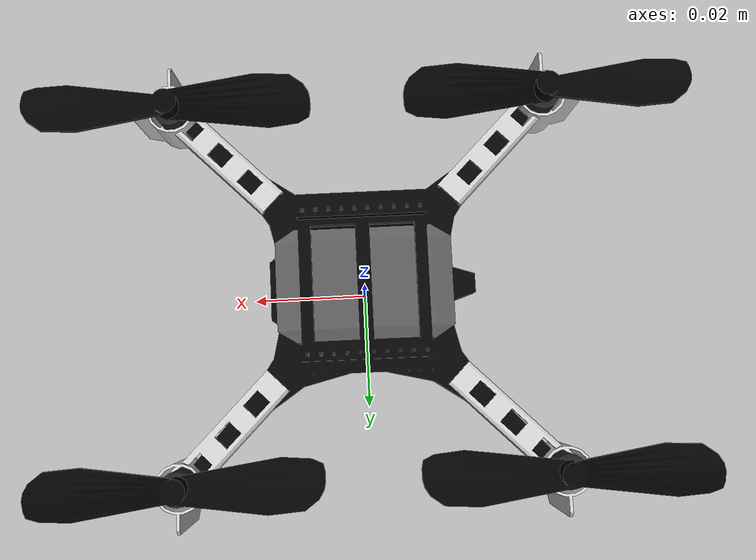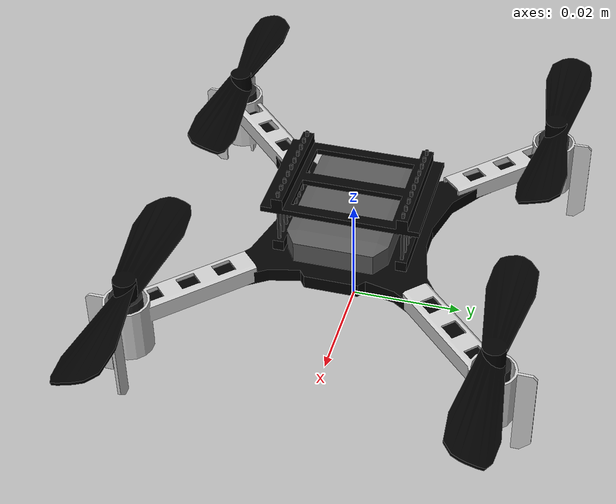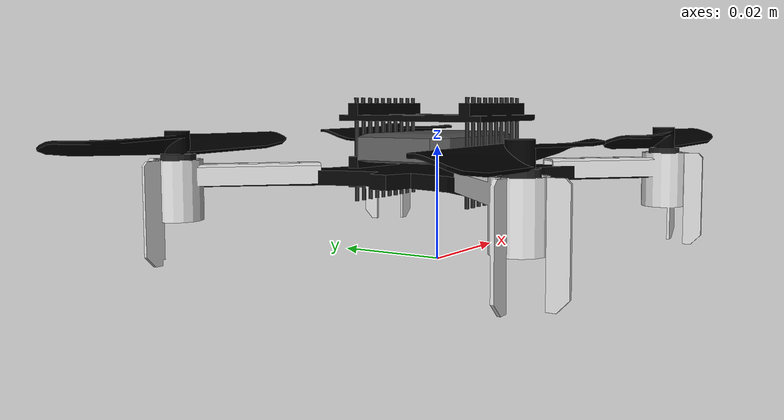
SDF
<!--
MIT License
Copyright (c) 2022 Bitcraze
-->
<?xml version="1.0" ?>

<sdf version="1.8">
    <model name="crazyflie">
        <pose>0 0 0.0 0 0 3.14</pose>
        <link name="crazyflie/body">
        <inertial>
            <pose>0 0 0 0 0 0</pose>
            <mass>0.025</mass>
            <inertia>
                <ixx>0.000016572</ixx>
                <ixy>0.00</ixy>
                <ixz>0.00</ixz>
                <iyy>0.000016656</iyy>
                <iyz>0.00000</iyz>
                <izz>0.000029262</izz>
            </inertia>
        </inertial>
        <collision name="crazyflie/body_collision">
            <pose>0 0 0 0 0 0</pose>
            <geometry>
                <box>
                    <size>0.10 0.10 0.03</size>
                </box>
            </geometry>
        </collision>
        <visual name="crazyflie/body_visual">
            <pose>0 0 0 0 -0 0</pose>
            <geometry>
                <mesh>
                    <scale>1 1 1</scale>
                    <uri>model://crazyflie/meshes/collada_files/cf2_assembly.dae</uri>
                </mesh>
            </geometry>
        </visual>
        </link>
        <link name="crazyflie/m1_prop">
            <pose>0.031 -0.031 0.021 0 0 0</pose>
            <inertial>
                <pose>0 0 0 0 -0 0</pose>
                <mass>0.0008</mass>
                <inertia>
                    <ixx>0.000000002*70</ixx>
                    <iyy>0.000000167*70</iyy>
                    <izz>0.000000168*70</izz>
                    <ixy>0</ixy>
                    <ixz>0</ixz>
                    <iyz>0</iyz>
                </inertia>
            </inertial>
            <visual name="crazyflie/m1_visual">
                <pose>0 0 0 0 -0 0</pose>
                <geometry>
                    <mesh>
                        <scale>1 1 1</scale>
                        <uri>model://crazyflie/meshes/collada_files/ccw_prop.dae</uri>
                    </mesh>
                </geometry>
            </visual>
        </link>
        <link name="crazyflie/m2_prop">
            <pose>-0.031 -0.031 0.021 0 0 0</pose>
            <inertial>
                <pose>0 0 0 0 -0 0</pose>
                <mass>0.0008</mass>
                <inertia>
                    <ixx>0.000000002*50</ixx>
                    <iyy>0.000000167*50</iyy>
                    <izz>0.000000168*50</izz>
                    <ixy>0</ixy>
                    <ixz>0</ixz>
                    <iyz>0</iyz>
                </inertia>
            </inertial>
            <visual name="crazyflie/m2_visual">
                <pose>0 0 0 0 -0 0</pose>
                <geometry>
                    <mesh>
                        <scale>1 1 1</scale>
                        <uri>model://crazyflie/meshes/collada_files/cw_prop.dae</uri>
                    </mesh>
                </geometry>
            </visual>
        </link>
        <link name="crazyflie/m3_prop">
            <pose >-0.031 0.031 0.021 0 0 0</pose>
            <inertial>
                <pose>0 0 0 0 -0 0</pose>
                <mass>0.0008</mass>
                <inertia>
                    <ixx>0.000000002*50</ixx>
                    <iyy>0.000000167*50</iyy>
                    <izz>0.000000168*50</izz>
                    <ixy>0</ixy>
                    <ixz>0</ixz>
                    <iyz>0</iyz>
                </inertia>
            </inertial>
            <visual name="crazyflie/m3_visual">
                <pose>0 0 0 0 -0 0</pose>
                <geometry>
                    <mesh>
                        <scale>1 1 1</scale>
                        <uri>model://crazyflie/meshes/collada_files/ccw_prop.dae</uri>
                    </mesh>
                </geometry>
            </visual>
        </link>
        <link name="crazyflie/m4_prop">
            <pose>0.031 0.031 0.021 0 0 0</pose>
            <inertial>
                <pose>0 0 0 0 -0 0</pose>
                <mass>0.0008</mass>
                <inertia>
                    <ixx>0.000000002*50</ixx>
                    <iyy>0.000000167*50</iyy>
                    <izz>0.000000168*50</izz>
                    <ixy>0</ixy>
                    <ixz>0</ixz>
                    <iyz>0</iyz>
                </inertia>
            </inertial>
            <visual name="crazyflie/m4_visual">
                <pose>0 0 0 0 -0 0</pose>
                <geometry>
                    <mesh>
                        <scale>1 1 1</scale>
                        <uri>model://crazyflie/meshes/collada_files/cw_prop.dae</uri>
                    </mesh>
                </geometry>
            </visual>
        </link>
        <joint name="crazyflie/m1_joint" type="revolute">
            <child>crazyflie/m1_prop</child>
            <parent>crazyflie/body</parent>
            <axis>
                <xyz>0 0 1</xyz>
                <limit>
                    <lower>-1e+16</lower>
                    <upper>1e+16</upper>
                </limit>
                <dynamics>
                    <spring_reference>0</spring_reference>
                    <spring_stiffness>0</spring_stiffness>
                </dynamics>
            </axis>
        </joint>
                <joint name="crazyflie/m2_joint" type="revolute">
            <child>crazyflie/m2_prop</child>
            <parent>crazyflie/body</parent>
            <axis>
                <xyz>0 0 1</xyz>
                <limit>
                    <lower>-1e+16</lower>
                    <upper>1e+16</upper>
                </limit>
                <dynamics>
                    <spring_reference>0</spring_reference>
                    <spring_stiffness>0</spring_stiffness>
                </dynamics>
            </axis>
        </joint>
                <joint name="crazyflie/m3_joint" type="revolute">
            <child>crazyflie/m3_prop</child>
            <parent>crazyflie/body</parent>
            <axis>
                <xyz>0 0 1</xyz>
                <limit>
                    <lower>-1e+16</lower>
                    <upper>1e+16</upper>
                </limit>
                <dynamics>
                    <spring_reference>0</spring_reference>
                    <spring_stiffness>0</spring_stiffness>
                </dynamics>
            </axis>
        </joint>
        <joint name="crazyflie/m4_joint" type="revolute">
            <child>crazyflie/m4_prop</child>
            <parent>crazyflie/body</parent>
            <axis>
                <xyz>0 0 1</xyz>
                <limit>
                    <lower>-1e+16</lower>
                    <upper>1e+16</upper>
                </limit>
                <dynamics>
                    <spring_reference>0</spring_reference>
                    <spring_stiffness>0</spring_stiffness>
                </dynamics>
            </axis>
        </joint>
    <plugin
        filename="ignition-gazebo-multicopter-motor-model-system"
        name="gz::sim::systems::MulticopterMotorModel">
        <robotNamespace>crazyflie</robotNamespace>
        <jointName>crazyflie/m1_joint</jointName>
        <linkName>crazyflie/m1_prop</linkName>
        <turningDirection>ccw</turningDirection>
        <timeConstantUp>0.0125</timeConstantUp>
        <timeConstantDown>0.025</timeConstantDown>
        <maxRotVelocity>2618</maxRotVelocity>
        <motorConstant>1.28192e-08</motorConstant>
        <momentConstant>0.005964552</momentConstant>
        <commandSubTopic>gazebo/command/motor_speed</commandSubTopic>
        <motorNumber>0</motorNumber>
        <rotorDragCoefficient>8.06428e-05</rotorDragCoefficient>
        <rollingMomentCoefficient>0.0000001</rollingMomentCoefficient>
        <motorSpeedPubTopic>motor_speed/0</motorSpeedPubTopic>
        <rotorVelocitySlowdownSim>150</rotorVelocitySlowdownSim>
        <motorType>velocity</motorType>
      </plugin>
      <plugin
        filename="ignition-gazebo-multicopter-motor-model-system"
        name="gz::sim::systems::MulticopterMotorModel">
        <robotNamespace>crazyflie</robotNamespace>
        <jointName>crazyflie/m2_joint</jointName>
        <linkName>crazyflie/m2_prop</linkName>
        <turningDirection>cw</turningDirection>
        <timeConstantUp>0.0125</timeConstantUp>
        <timeConstantDown>0.025</timeConstantDown>
        <maxRotVelocity>2618</maxRotVelocity>
        <motorConstant>1.28192e-08</motorConstant>
        <momentConstant>0.005964552</momentConstant>
        <commandSubTopic>gazebo/command/motor_speed</commandSubTopic>
        <motorNumber>1</motorNumber>
        <rotorDragCoefficient>8.06428e-05</rotorDragCoefficient>
        <rollingMomentCoefficient>0.0000001</rollingMomentCoefficient>
        <motorSpeedPubTopic>motor_speed/1</motorSpeedPubTopic>
        <rotorVelocitySlowdownSim>150</rotorVelocitySlowdownSim>
        <motorType>velocity</motorType>
      </plugin>
      <plugin
        filename="ignition-gazebo-multicopter-motor-model-system"
        name="gz::sim::systems::MulticopterMotorModel">
        <robotNamespace>crazyflie</robotNamespace>
        <jointName>crazyflie/m3_joint</jointName>
        <linkName>crazyflie/m3_prop</linkName>
        <turningDirection>ccw</turningDirection>
        <timeConstantUp>0.0125</timeConstantUp>
        <timeConstantDown>0.025</timeConstantDown>
        <maxRotVelocity>2618</maxRotVelocity>
        <motorConstant>1.28192e-08</motorConstant>
        <momentConstant>0.005964552</momentConstant>
        <commandSubTopic>gazebo/command/motor_speed</commandSubTopic>
        <motorNumber>2</motorNumber>
        <rotorDragCoefficient>8.06428e-05</rotorDragCoefficient>
        <rollingMomentCoefficient>0.0000001</rollingMomentCoefficient>
        <motorSpeedPubTopic>motor_speed/2</motorSpeedPubTopic>
        <rotorVelocitySlowdownSim>150</rotorVelocitySlowdownSim>
        <motorType>velocity</motorType>
      </plugin>
      <plugin
        filename="ignition-gazebo-multicopter-motor-model-system"
        name="gz::sim::systems::MulticopterMotorModel">
        <robotNamespace>crazyflie</robotNamespace>
        <jointName>crazyflie/m4_joint</jointName>
        <linkName>crazyflie/m4_prop</linkName>
        <turningDirection>cw</turningDirection>
        <timeConstantUp>0.0125</timeConstantUp>
        <timeConstantDown>0.025</timeConstantDown>
        <maxRotVelocity>2618</maxRotVelocity>
        <motorConstant>1.28192e-08</motorConstant>
        <momentConstant>0.005964552</momentConstant>
        <commandSubTopic>gazebo/command/motor_speed</commandSubTopic>
        <motorNumber>3</motorNumber>
        <rotorDragCoefficient>8.06428e-05</rotorDragCoefficient>
        <rollingMomentCoefficient>0.000001</rollingMomentCoefficient>
        <motorSpeedPubTopic>motor_speed/3</motorSpeedPubTopic>
        <rotorVelocitySlowdownSim>150</rotorVelocitySlowdownSim>
        <motorType>velocity</motorType>
      </plugin>
      <plugin
        filename="ignition-gazebo-odometry-publisher-system"
        name="ignition::gazebo::systems::OdometryPublisher">
        <dimensions>3</dimensions>
      </plugin>
    </model>
</sdf>
